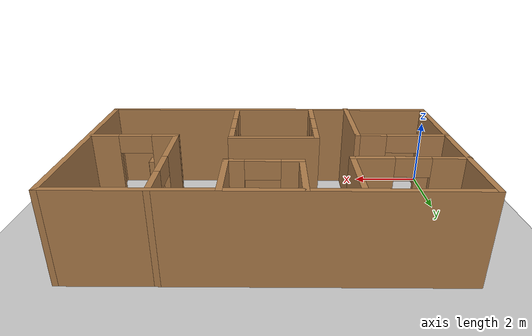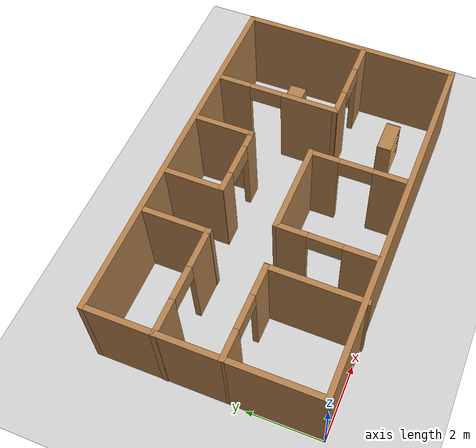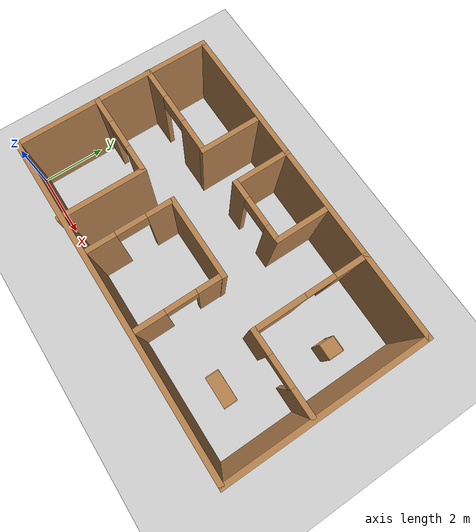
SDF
<sdf version="1.7">
 <world name="default">
  <light name="sun" type="directional">
   <pose>0 0 10 0 -0 0</pose>
   <diffuse>0.8 0.8 0.8 1</diffuse>
   <specular>0.2 0.2 0.2 1</specular>
   <attenuation>
    <range>1000</range>
    <constant>0.9</constant>
    <linear>0.01</linear>
    <quadratic>0.001</quadratic>
   </attenuation>
   <direction>-0.5 0.1 -0.9</direction>
   <spot><inner_angle>0</inner_angle><outer_angle>0</outer_angle><falloff>0</falloff></spot>
  </light>
  <model name="ground_plane">
   <static>1</static>
   <link name="link">
    <collision name="collision">
     <geometry><plane><normal>0 0 1</normal><size>100 100</size></plane></geometry>
     <surface><friction><ode><mu>100</mu><mu2>50</mu2></ode></friction></surface>
    </collision>
    <visual name="visual">
     <cast_shadows>0</cast_shadows>
     <geometry><plane><normal>0 0 1</normal><size>100 100</size></plane></geometry>
     <material>
      <script><uri>file://media/materials/scripts/gazebo.material</uri><name>Gazebo/Grey</name></script>
     </material>
    </visual>
   </link>
  </model>
  <gravity>0 0 -9.8</gravity>
  <magnetic_field>6e-06 2.3e-05 -4.2e-05</magnetic_field>
  <atmosphere type="adiabatic"/>
  <physics type="ode">
   <max_step_size>0.001</max_step_size>
   <real_time_factor>1</real_time_factor>
   <real_time_update_rate>1000</real_time_update_rate>
  </physics>
  <scene><ambient>0.4 0.4 0.4 1</ambient><background>0.7 0.7 0.7 1</background><shadows>1</shadows></scene>
  <audio><device>default</device></audio>
  <spherical_coordinates>
   <surface_model>EARTH_WGS84</surface_model>
   <latitude_deg>0</latitude_deg>
   <longitude_deg>0</longitude_deg>
   <elevation>0</elevation>
   <heading_deg>0</heading_deg>
  </spherical_coordinates>
  <model name="real_map2">
   <pose>5.01636 1.23007 0 0 -0 0</pose>
   <link name="Wall_10">
    <pose>2.54051 2.99854 0 0 -0 -1.5708</pose>
    <visual name="Wall_10_Visual_0">
     <pose>-1.24319 0 1.25 0 -0 0</pose>
     <geometry><box><size>1.01362 0.15 2.5</size></box></geometry>
     <material>
      <script><uri>file://media/materials/scripts/gazebo.material</uri><name>Gazebo/Wood</name></script>
      <ambient>1 1 1 1</ambient>
     </material>
     <meta><layer>0</layer></meta>
    </visual>
    <collision name="Wall_10_Collision_0">
     <geometry><box><size>1.01362 0.15 2.5</size></box></geometry>
     <pose>-1.24319 0 1.25 0 -0 0</pose>
    </collision>
    <visual name="Wall_10_Visual_1">
     <pose>0.956813 0 1.25 0 -0 0</pose>
     <geometry><box><size>1.58638 0.15 2.5</size></box></geometry>
     <material>
      <script><uri>file://media/materials/scripts/gazebo.material</uri><name>Gazebo/Wood</name></script>
      <ambient>1 1 1 1</ambient>
     </material>
     <meta><layer>0</layer></meta>
    </visual>
    <collision name="Wall_10_Collision_1">
     <geometry><box><size>1.58638 0.15 2.5</size></box></geometry>
     <pose>0.956813 0 1.25 0 -0 0</pose>
    </collision>
    <visual name="Wall_10_Visual_2">
     <pose>-0.286375 0 2.25 0 -0 0</pose>
     <geometry><box><size>0.9 0.15 0.5</size></box></geometry>
     <material>
      <script><uri>file://media/materials/scripts/gazebo.material</uri><name>Gazebo/Wood</name></script>
      <ambient>1 1 1 1</ambient>
     </material>
     <meta><layer>0</layer></meta>
    </visual>
    <collision name="Wall_10_Collision_2">
     <geometry><box><size>0.9 0.15 0.5</size></box></geometry>
     <pose>-0.286375 0 2.25 0 -0 0</pose>
    </collision>
   </link>
   <link name="Wall_11">
    <pose>3.68843 1.31692 0 0 -0 0.00576</pose>
    <visual name="Wall_11_Visual_0">
     <pose>-0.850031 0 1.25 0 -0 0</pose>
     <geometry><box><size>0.746373 0.15 2.5</size></box></geometry>
     <material>
      <script><uri>file://media/materials/scripts/gazebo.material</uri><name>Gazebo/Wood</name></script>
      <ambient>1 1 1 1</ambient>
     </material>
     <meta><layer>0</layer></meta>
    </visual>
    <collision name="Wall_11_Collision_0">
     <geometry><box><size>0.746373 0.15 2.5</size></box></geometry>
     <pose>-0.850031 0 1.25 0 -0 0</pose>
    </collision>
    <visual name="Wall_11_Visual_1">
     <pose>0.823187 0 1.25 0 -0 0</pose>
     <geometry><box><size>0.800061 0.15 2.5</size></box></geometry>
     <material>
      <script><uri>file://media/materials/scripts/gazebo.material</uri><name>Gazebo/Wood</name></script>
      <ambient>1 1 1 1</ambient>
     </material>
     <meta><layer>0</layer></meta>
    </visual>
    <collision name="Wall_11_Collision_1">
     <geometry><box><size>0.800061 0.15 2.5</size></box></geometry>
     <pose>0.823187 0 1.25 0 -0 0</pose>
    </collision>
    <visual name="Wall_11_Visual_2">
     <pose>-0.026844 0 2.25 0 -0 0</pose>
     <geometry><box><size>0.9 0.15 0.5</size></box></geometry>
     <material>
      <script><uri>file://media/materials/scripts/gazebo.material</uri><name>Gazebo/Wood</name></script>
      <ambient>1 1 1 1</ambient>
     </material>
     <meta><layer>0</layer></meta>
    </visual>
    <collision name="Wall_11_Collision_2">
     <geometry><box><size>0.9 0.15 0.5</size></box></geometry>
     <pose>-0.026844 0 2.25 0 -0 0</pose>
    </collision>
   </link>
   <link name="Wall_13">
    <pose>-3.50661 2.87494 0 0 -0 0</pose>
    <visual name="Wall_13_Visual_0">
     <pose>-1.00641 0 1.25 0 -0 0</pose>
     <geometry><box><size>0.987175 0.15 2.5</size></box></geometry>
     <material>
      <script><uri>file://media/materials/scripts/gazebo.material</uri><name>Gazebo/Wood</name></script>
      <ambient>1 1 1 1</ambient>
     </material>
     <meta><layer>0</layer></meta>
    </visual>
    <collision name="Wall_13_Collision_0">
     <geometry><box><size>0.987175 0.15 2.5</size></box></geometry>
     <pose>-1.00641 0 1.25 0 -0 0</pose>
    </collision>
    <visual name="Wall_13_Visual_1">
     <pose>0.943588 0 1.25 0 -0 0</pose>
     <geometry><box><size>1.11282 0.15 2.5</size></box></geometry>
     <material>
      <script><uri>file://media/materials/scripts/gazebo.material</uri><name>Gazebo/Wood</name></script>
      <ambient>1 1 1 1</ambient>
     </material>
     <meta><layer>0</layer></meta>
    </visual>
    <collision name="Wall_13_Collision_1">
     <geometry><box><size>1.11282 0.15 2.5</size></box></geometry>
     <pose>0.943588 0 1.25 0 -0 0</pose>
    </collision>
    <visual name="Wall_13_Visual_2">
     <pose>-0.062825 0 2.25 0 -0 0</pose>
     <geometry><box><size>0.9 0.15 0.5</size></box></geometry>
     <material>
      <script><uri>file://media/materials/scripts/gazebo.material</uri><name>Gazebo/Wood</name></script>
      <ambient>1 1 1 1</ambient>
     </material>
     <meta><layer>0</layer></meta>
    </visual>
    <collision name="Wall_13_Collision_2">
     <geometry><box><size>0.9 0.15 0.5</size></box></geometry>
     <pose>-0.062825 0 2.25 0 -0 0</pose>
    </collision>
   </link>
   <link name="Wall_14">
    <collision name="Wall_14_Collision">
     <geometry><box><size>1.80418 0.15 2.5</size></box></geometry>
     <pose>0 0 1.25 0 -0 0</pose>
    </collision>
    <visual name="Wall_14_Visual">
     <pose>0 0 1.25 0 -0 0</pose>
     <geometry><box><size>1.80418 0.15 2.5</size></box></geometry>
     <material>
      <script><uri>file://media/materials/scripts/gazebo.material</uri><name>Gazebo/Wood</name></script>
      <ambient>1 1 1 1</ambient>
     </material>
     <meta><layer>0</layer></meta>
    </visual>
    <pose>-2.08161 3.6888 0 0 -0 1.5708</pose>
   </link>
   <link name="Wall_16">
    <collision name="Wall_16_Collision">
     <geometry><box><size>1.73805 0.15 2.5</size></box></geometry>
     <pose>0 0 1.25 0 -0 0</pose>
    </collision>
    <visual name="Wall_16_Visual">
     <pose>0 0 1.25 0 -0 0</pose>
     <geometry><box><size>1.73805 0.15 2.5</size></box></geometry>
     <material>
      <script><uri>file://media/materials/scripts/gazebo.material</uri><name>Gazebo/Wood</name></script>
      <ambient>1 1 1 1</ambient>
     </material>
     <meta><layer>0</layer></meta>
    </visual>
    <pose>-0.831863 3.87951 0 0 -0 -1.5708</pose>
   </link>
   <link name="Wall_17">
    <pose>0.093137 3.07226 0 0 -0 0</pose>
    <visual name="Wall_17_Visual_0">
     <pose>-0.708094 0 1.25 0 -0 0</pose>
     <geometry><box><size>0.583812 0.15 2.5</size></box></geometry>
     <material>
      <script><uri>file://media/materials/scripts/gazebo.material</uri><name>Gazebo/Wood</name></script>
      <ambient>1 1 1 1</ambient>
     </material>
     <meta><layer>0</layer></meta>
    </visual>
    <collision name="Wall_17_Collision_0">
     <geometry><box><size>0.583812 0.15 2.5</size></box></geometry>
     <pose>-0.708094 0 1.25 0 -0 0</pose>
    </collision>
    <visual name="Wall_17_Visual_1">
     <pose>0.735294 0 1.25 0 -0 0</pose>
     <geometry><box><size>0.529413 0.15 2.5</size></box></geometry>
     <material>
      <script><uri>file://media/materials/scripts/gazebo.material</uri><name>Gazebo/Wood</name></script>
      <ambient>1 1 1 1</ambient>
     </material>
     <meta><layer>0</layer></meta>
    </visual>
    <collision name="Wall_17_Collision_1">
     <geometry><box><size>0.529413 0.15 2.5</size></box></geometry>
     <pose>0.735294 0 1.25 0 -0 0</pose>
    </collision>
    <visual name="Wall_17_Visual_2">
     <pose>0.0272 0 2.25 0 -0 0</pose>
     <geometry><box><size>0.886775 0.15 0.5</size></box></geometry>
     <material>
      <script><uri>file://media/materials/scripts/gazebo.material</uri><name>Gazebo/Wood</name></script>
      <ambient>1 1 1 1</ambient>
     </material>
     <meta><layer>0</layer></meta>
    </visual>
    <collision name="Wall_17_Collision_2">
     <geometry><box><size>0.886775 0.15 0.5</size></box></geometry>
     <pose>0.0272 0 2.25 0 -0 0</pose>
    </collision>
   </link>
   <link name="Wall_18">
    <collision name="Wall_18_Collision">
     <geometry><box><size>1.73805 0.15 2.5</size></box></geometry>
     <pose>0 0 1.25 0 -0 0</pose>
    </collision>
    <visual name="Wall_18_Visual">
     <pose>0 0 1.25 0 -0 0</pose>
     <geometry><box><size>1.73805 0.15 2.5</size></box></geometry>
     <material>
      <script><uri>file://media/materials/scripts/gazebo.material</uri><name>Gazebo/Wood</name></script>
      <ambient>1 1 1 1</ambient>
     </material>
     <meta><layer>0</layer></meta>
    </visual>
    <pose>1.01814 3.87951 0 0 -0 1.5708</pose>
   </link>
   <link name="Wall_2">
    <collision name="Wall_2_Collision">
     <geometry><box><size>6 0.15 2.5</size></box></geometry>
     <pose>0 0 1.25 0 -0 0</pose>
    </collision>
    <visual name="Wall_2_Visual">
     <pose>0 0 1.25 0 -0 0</pose>
     <geometry><box><size>6 0.15 2.5</size></box></geometry>
     <material>
      <script><uri>file://media/materials/scripts/gazebo.material</uri><name>Gazebo/Wood</name></script>
      <ambient>1 1 1 1</ambient>
     </material>
     <meta><layer>0</layer></meta>
    </visual>
    <pose>-4.91839 1.74854 0 0 -0 -1.5708</pose>
   </link>
   <link name="Wall_20">
    <pose>-1.3278 0.128725 0 0 -0 1.56571</pose>
    <visual name="Wall_20_Visual_0">
     <pose>-0.875108 0 1.25 0 -0 0</pose>
     <geometry><box><size>1.00109 0.15 2.5</size></box></geometry>
     <material>
      <script><uri>file://media/materials/scripts/gazebo.material</uri><name>Gazebo/Wood</name></script>
      <ambient>1 1 1 1</ambient>
     </material>
     <meta><layer>0</layer></meta>
    </visual>
    <collision name="Wall_20_Collision_0">
     <geometry><box><size>1.00109 0.15 2.5</size></box></geometry>
     <pose>-0.875108 0 1.25 0 -0 0</pose>
    </collision>
    <visual name="Wall_20_Visual_1">
     <pose>0.950546 0 1.25 0 -0 0</pose>
     <geometry><box><size>0.850216 0.15 2.5</size></box></geometry>
     <material>
      <script><uri>file://media/materials/scripts/gazebo.material</uri><name>Gazebo/Wood</name></script>
      <ambient>1 1 1 1</ambient>
     </material>
     <meta><layer>0</layer></meta>
    </visual>
    <collision name="Wall_20_Collision_1">
     <geometry><box><size>0.850216 0.15 2.5</size></box></geometry>
     <pose>0.950546 0 1.25 0 -0 0</pose>
    </collision>
    <visual name="Wall_20_Visual_2">
     <pose>0.075438 0 2.25 0 -0 0</pose>
     <geometry><box><size>0.9 0.15 0.5</size></box></geometry>
     <material>
      <script><uri>file://media/materials/scripts/gazebo.material</uri><name>Gazebo/Wood</name></script>
      <ambient>1 1 1 1</ambient>
     </material>
     <meta><layer>0</layer></meta>
    </visual>
    <collision name="Wall_20_Collision_2">
     <geometry><box><size>0.9 0.15 0.5</size></box></geometry>
     <pose>0.075438 0 2.25 0 -0 0</pose>
    </collision>
   </link>
   <link name="Wall_22">
    <collision name="Wall_22_Collision">
     <geometry><box><size>2.5 0.15 2.5</size></box></geometry>
     <pose>0 0 1.25 0 -0 0</pose>
    </collision>
    <visual name="Wall_22_Visual">
     <pose>0 0 1.25 0 -0 0</pose>
     <geometry><box><size>2.5 0.15 2.5</size></box></geometry>
     <material>
      <script><uri>file://media/materials/scripts/gazebo.material</uri><name>Gazebo/Wood</name></script>
      <ambient>1 1 1 1</ambient>
     </material>
     <meta><layer>0</layer></meta>
    </visual>
    <pose>-0.146188 1.44259 0 0 -0 0</pose>
   </link>
   <link name="Wall_24">
    <pose>1.01559 0.153088 0 0 -0 -1.5708</pose>
    <visual name="Wall_24_Visual_0">
     <pose>-0.888943 0 1.25 0 -0 0</pose>
     <geometry><box><size>0.722114 0.15 2.5</size></box></geometry>
     <material>
      <script><uri>file://media/materials/scripts/gazebo.material</uri><name>Gazebo/Wood</name></script>
      <ambient>1 1 1 1</ambient>
     </material>
     <meta><layer>0</layer></meta>
    </visual>
    <collision name="Wall_24_Collision_0">
     <geometry><box><size>0.722114 0.15 2.5</size></box></geometry>
     <pose>-0.888943 0 1.25 0 -0 0</pose>
    </collision>
    <visual name="Wall_24_Visual_1">
     <pose>0.811057 0 1.25 0 -0 0</pose>
     <geometry><box><size>0.877886 0.15 2.5</size></box></geometry>
     <material>
      <script><uri>file://media/materials/scripts/gazebo.material</uri><name>Gazebo/Wood</name></script>
      <ambient>1 1 1 1</ambient>
     </material>
     <meta><layer>0</layer></meta>
    </visual>
    <collision name="Wall_24_Collision_1">
     <geometry><box><size>0.877886 0.15 2.5</size></box></geometry>
     <pose>0.811057 0 1.25 0 -0 0</pose>
    </collision>
    <visual name="Wall_24_Visual_2">
     <pose>-0.077886 0 2.25 0 -0 0</pose>
     <geometry><box><size>0.9 0.15 0.5</size></box></geometry>
     <material>
      <script><uri>file://media/materials/scripts/gazebo.material</uri><name>Gazebo/Wood</name></script>
      <ambient>1 1 1 1</ambient>
     </material>
     <meta><layer>0</layer></meta>
    </visual>
    <collision name="Wall_24_Collision_2">
     <geometry><box><size>0.9 0.15 0.5</size></box></geometry>
     <pose>-0.077886 0 2.25 0 -0 0</pose>
    </collision>
   </link>
   <link name="Wall_3">
    <collision name="Wall_3_Collision">
     <geometry><box><size>10 0.15 2.5</size></box></geometry>
     <pose>0 0 1.25 0 -0 0</pose>
    </collision>
    <visual name="Wall_3_Visual">
     <pose>0 0 1.25 0 -0 0</pose>
     <geometry><box><size>10 0.15 2.5</size></box></geometry>
     <material>
      <script><uri>file://media/materials/scripts/gazebo.material</uri><name>Gazebo/Wood</name></script>
      <ambient>1 1 1 1</ambient>
     </material>
     <meta><layer>0</layer></meta>
    </visual>
    <pose>0.006612 -1.17646 0 0 -0 0</pose>
   </link>
   <link name="Wall_4">
    <collision name="Wall_4_Collision">
     <geometry><box><size>6 0.15 2.5</size></box></geometry>
     <pose>0 0 1.25 0 -0 0</pose>
    </collision>
    <visual name="Wall_4_Visual">
     <pose>0 0 1.25 0 -0 0</pose>
     <geometry><box><size>6 0.15 2.5</size></box></geometry>
     <material>
      <script><uri>file://media/materials/scripts/gazebo.material</uri><name>Gazebo/Wood</name></script>
      <ambient>1 1 1 1</ambient>
     </material>
     <meta><layer>0</layer></meta>
    </visual>
    <pose>4.93161 1.74854 0 0 -0 1.5708</pose>
   </link>
   <link name="Wall_5">
    <collision name="Wall_5_Collision">
     <geometry><box><size>10 0.15 2.5</size></box></geometry>
     <pose>0 0 1.25 0 -0 0</pose>
    </collision>
    <visual name="Wall_5_Visual">
     <pose>0 0 1.25 0 -0 0</pose>
     <geometry><box><size>10 0.15 2.5</size></box></geometry>
     <material>
      <script><uri>file://media/materials/scripts/gazebo.material</uri><name>Gazebo/Wood</name></script>
      <ambient>1 1 1 1</ambient>
     </material>
     <meta><layer>0</layer></meta>
    </visual>
    <pose>0.006612 4.67354 0 0 -0 3.14159</pose>
   </link>
   <link name="Wall_7">
    <pose>-3.69774 1.24165 0 0 -0 -0.005417</pose>
    <visual name="Wall_7_Visual_0">
     <pose>-0.880897 0 1.25 0 -0 0</pose>
     <geometry><box><size>0.829541 0.15 2.5</size></box></geometry>
     <material>
      <script><uri>file://media/materials/scripts/gazebo.material</uri><name>Gazebo/Wood</name></script>
      <ambient>1 1 1 1</ambient>
     </material>
     <meta><layer>0</layer></meta>
    </visual>
    <collision name="Wall_7_Collision_0">
     <geometry><box><size>0.829541 0.15 2.5</size></box></geometry>
     <pose>-0.880897 0 1.25 0 -0 0</pose>
    </collision>
    <visual name="Wall_7_Visual_1">
     <pose>0.864771 0 1.25 0 -0 0</pose>
     <geometry><box><size>0.861795 0.15 2.5</size></box></geometry>
     <material>
      <script><uri>file://media/materials/scripts/gazebo.material</uri><name>Gazebo/Wood</name></script>
      <ambient>1 1 1 1</ambient>
     </material>
     <meta><layer>0</layer></meta>
    </visual>
    <collision name="Wall_7_Collision_1">
     <geometry><box><size>0.861795 0.15 2.5</size></box></geometry>
     <pose>0.864771 0 1.25 0 -0 0</pose>
    </collision>
    <visual name="Wall_7_Visual_2">
     <pose>-0.016127 0 2.25 0 -0 0</pose>
     <geometry><box><size>0.9 0.15 0.5</size></box></geometry>
     <material>
      <script><uri>file://media/materials/scripts/gazebo.material</uri><name>Gazebo/Wood</name></script>
      <ambient>1 1 1 1</ambient>
     </material>
     <meta><layer>0</layer></meta>
    </visual>
    <collision name="Wall_7_Collision_2">
     <geometry><box><size>0.9 0.15 0.5</size></box></geometry>
     <pose>-0.016127 0 2.25 0 -0 0</pose>
    </collision>
   </link>
   <link name="Wall_8">
    <collision name="Wall_8_Collision">
     <geometry><box><size>2.61906 0.15 2.5</size></box></geometry>
     <pose>0 0 1.25 0 -0 0</pose>
    </collision>
    <visual name="Wall_8_Visual">
     <pose>0 0 1.25 0 -0 0</pose>
     <geometry><box><size>2.61906 0.15 2.5</size></box></geometry>
     <material>
      <script><uri>file://media/materials/scripts/gazebo.material</uri><name>Gazebo/Wood</name></script>
      <ambient>1 1 1 1</ambient>
     </material>
     <meta><layer>0</layer></meta>
    </visual>
    <pose>-2.47047 0.000525 0 0 -0 -1.57615</pose>
   </link>
   <static>1</static>
  </model>
  <model name="bookshelf">
   <static>1</static>
   <link name="link">
    <inertial><mass>1</mass></inertial>
    <collision name="back">
     <pose>0 0.005 0.6 0 -0 0</pose>
     <geometry><box><size>0.9 0.01 1.2</size></box></geometry>
    </collision>
    <visual name="visual1">
     <pose>0 0.005 0.6 0 -0 0</pose>
     <geometry><box><size>0.9 0.01 1.2</size></box></geometry>
     <material>
      <script><uri>file://media/materials/scripts/gazebo.material</uri><name>Gazebo/Wood</name></script>
     </material>
    </visual>
    <collision name="left_side">
     <pose>0.45 -0.195 0.6 0 -0 0</pose>
     <geometry><box><size>0.02 0.4 1.2</size></box></geometry>
    </collision>
    <visual name="visual2">
     <pose>0.45 -0.195 0.6 0 -0 0</pose>
     <geometry><box><size>0.02 0.4 1.2</size></box></geometry>
     <material>
      <script><uri>file://media/materials/scripts/gazebo.material</uri><name>Gazebo/Wood</name></script>
     </material>
    </visual>
    <collision name="right_side">
     <pose>-0.45 -0.195 0.6 0 -0 0</pose>
     <geometry><box><size>0.02 0.4 1.2</size></box></geometry>
    </collision>
    <visual name="visual3">
     <pose>-0.45 -0.195 0.6 0 -0 0</pose>
     <geometry><box><size>0.02 0.4 1.2</size></box></geometry>
     <material>
      <script><uri>file://media/materials/scripts/gazebo.material</uri><name>Gazebo/Wood</name></script>
     </material>
    </visual>
    <collision name="bottom">
     <pose>0 -0.195 0.03 0 -0 0</pose>
     <geometry><box><size>0.88 0.4 0.06</size></box></geometry>
    </collision>
    <visual name="visual4">
     <pose>0 -0.195 0.03 0 -0 0</pose>
     <geometry><box><size>0.88 0.4 0.06</size></box></geometry>
     <material>
      <script><uri>file://media/materials/scripts/gazebo.material</uri><name>Gazebo/Wood</name></script>
     </material>
    </visual>
    <collision name="top">
     <pose>0 -0.195 1.19 0 -0 0</pose>
     <geometry><box><size>0.88 0.4 0.02</size></box></geometry>
    </collision>
    <visual name="visual5">
     <pose>0 -0.195 1.19 0 -0 0</pose>
     <geometry><box><size>0.88 0.4 0.02</size></box></geometry>
     <material>
      <script><uri>file://media/materials/scripts/gazebo.material</uri><name>Gazebo/Wood</name></script>
     </material>
    </visual>
    <collision name="low_shelf">
     <pose>0 -0.195 0.43 0 -0 0</pose>
     <geometry><box><size>0.88 0.4 0.02</size></box></geometry>
    </collision>
    <visual name="visual6">
     <pose>0 -0.195 0.43 0 -0 0</pose>
     <geometry><box><size>0.88 0.4 0.02</size></box></geometry>
     <material>
      <script><uri>file://media/materials/scripts/gazebo.material</uri><name>Gazebo/Wood</name></script>
     </material>
    </visual>
    <collision name="high_shelf">
     <pose>0 -0.195 0.8 0 -0 0</pose>
     <geometry><box><size>0.88 0.4 0.02</size></box></geometry>
    </collision>
    <visual name="visual7">
     <pose>0 -0.195 0.8 0 -0 0</pose>
     <geometry><box><size>0.88 0.4 0.02</size></box></geometry>
     <material>
      <script><uri>file://media/materials/scripts/gazebo.material</uri><name>Gazebo/Wood</name></script>
     </material>
    </visual>
   </link>
   <pose>8.27701 1.36461 0 0 -0 0</pose>
  </model>
  <model name="cabinet">
   <static>1</static>
   <link name="cabinet_bottom_plate">
    <inertial>
     <pose>0 0 -1 0 -0 0</pose>
     <inertia><ixx>2.05</ixx><ixy>0</ixy><ixz>0</ixz><iyy>2.05</iyy><iyz>0</iyz><izz>2.05</izz></inertia>
     <mass>25</mass>
    </inertial>
    <collision name="cabinet_bottom_plate_geom">
     <pose>0 0 0.01 0 -0 0</pose>
     <geometry><box><size>0.45 0.45 0.02</size></box></geometry>
    </collision>
    <visual name="cabinet_bottom_plate_geom_visual">
     <pose>0 0 0.01 0 -0 0</pose>
     <geometry><box><size>0.45 0.45 0.02</size></box></geometry>
     <material>
      <script><uri>file://media/materials/scripts/gazebo.material</uri><name>Gazebo/Wood</name></script>
     </material>
    </visual>
    <collision name="cabinet_bottom_plate_geom_cabinet_back_plate">
     <pose>0.235 0 0.51 0 -0 0</pose>
     <geometry><box><size>0.02 0.45 1.02</size></box></geometry>
    </collision>
    <visual name="cabinet_bottom_plate_geom_cabinet_back_plate_visual">
     <pose>0.235 0 0.51 0 -0 0</pose>
     <geometry><box><size>0.02 0.45 1.02</size></box></geometry>
     <material>
      <script><uri>file://media/materials/scripts/gazebo.material</uri><name>Gazebo/Wood</name></script>
     </material>
    </visual>
    <collision name="cabinet_bottom_plate_geom_cabinet_left_plate">
     <pose>0 0.235 0.51 0 -0 0</pose>
     <geometry><box><size>0.45 0.02 1.02</size></box></geometry>
    </collision>
    <visual name="cabinet_bottom_plate_geom_cabinet_left_plate_visual">
     <pose>0 0.235 0.51 0 -0 0</pose>
     <geometry><box><size>0.45 0.02 1.02</size></box></geometry>
     <material>
      <script><uri>file://media/materials/scripts/gazebo.material</uri><name>Gazebo/Wood</name></script>
     </material>
    </visual>
    <collision name="cabinet_bottom_plate_geom_cabinet_middle_plate">
     <pose>0 0 0.51 0 -0 0</pose>
     <geometry><box><size>0.45 0.45 0.02</size></box></geometry>
    </collision>
    <visual name="cabinet_bottom_plate_geom_cabinet_middle_plate_visual">
     <pose>0 0 0.51 0 -0 0</pose>
     <geometry><box><size>0.45 0.45 0.02</size></box></geometry>
     <material>
      <script><uri>file://media/materials/scripts/gazebo.material</uri><name>Gazebo/Wood</name></script>
     </material>
    </visual>
    <collision name="cabinet_bottom_plate_geom_cabinet_right_plate">
     <pose>0 -0.235 0.51 0 -0 0</pose>
     <geometry><box><size>0.45 0.02 1.02</size></box></geometry>
    </collision>
    <visual name="cabinet_bottom_plate_geom_cabinet_right_plate_visual">
     <pose>0 -0.235 0.51 0 -0 0</pose>
     <geometry><box><size>0.45 0.02 1.02</size></box></geometry>
     <material>
      <script><uri>file://media/materials/scripts/gazebo.material</uri><name>Gazebo/Wood</name></script>
     </material>
    </visual>
    <collision name="cabinet_bottom_plate_geom_cabinet_top_plate">
     <pose>0 0 1.01 0 -0 0</pose>
     <geometry><box><size>0.45 0.45 0.02</size></box></geometry>
    </collision>
    <visual name="cabinet_bottom_plate_geom_cabinet_top_plate_visual">
     <pose>0 0 1.01 0 -0 0</pose>
     <geometry><box><size>0.45 0.45 0.02</size></box></geometry>
     <material>
      <script><uri>file://media/materials/scripts/gazebo.material</uri><name>Gazebo/Wood</name></script>
     </material>
    </visual>
   </link>
   <pose>8.99979 4.19865 0 0 -0 0</pose>
  </model>
 </world>
</sdf>
